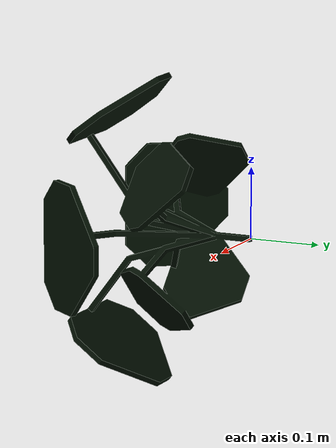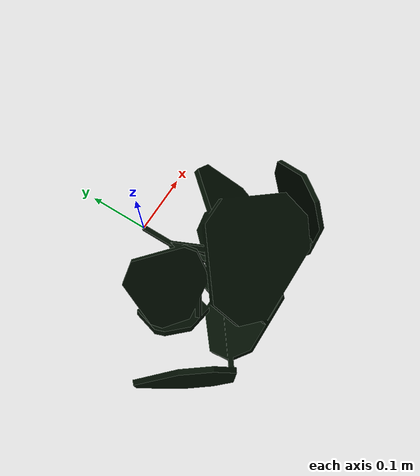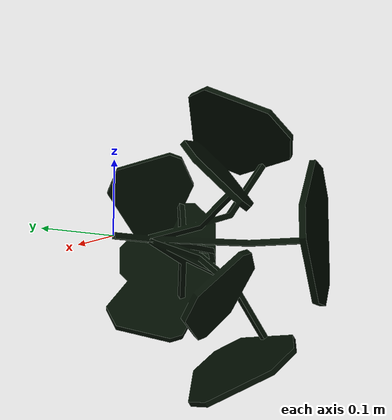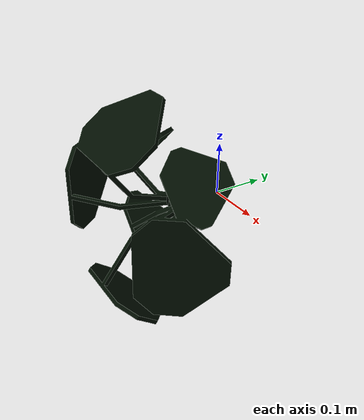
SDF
<?xml version="1.0" ?>
<sdf version="1.5">

<model name="plant2">
<static>1</static>
<pose>0.0 0.0 0.0 1.5707 0.0 0.0</pose>

  <link name="link">

    <collision name="collision">
      <geometry>
        <mesh>
          <uri>model://plant2/plant2.stl</uri>
        </mesh>
      </geometry>
    </collision>

    <visual name="visual">
      <geometry>
        <mesh>
          <uri>model://plant2/plant2.stl</uri>
        </mesh>
      </geometry>
      <material>
        <lighting>1</lighting>
        <ambient>0.0 0.5 0.0 1</ambient>
        <diffuse>0.0 0.05 0.0 1</diffuse>
        <specular>0.0 0.01 0.0 1</specular>
        <emissive>0 0 0 1</emissive>
        <shader type='vertex'>
          <normal_map>__default__</normal_map>
        </shader>
      </material>
      <cast_shadows>0</cast_shadows>
    </visual>

  </link>
</model>
</sdf>
